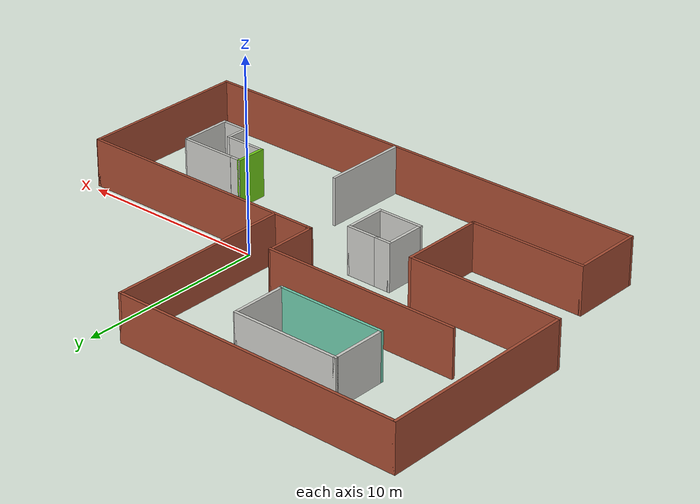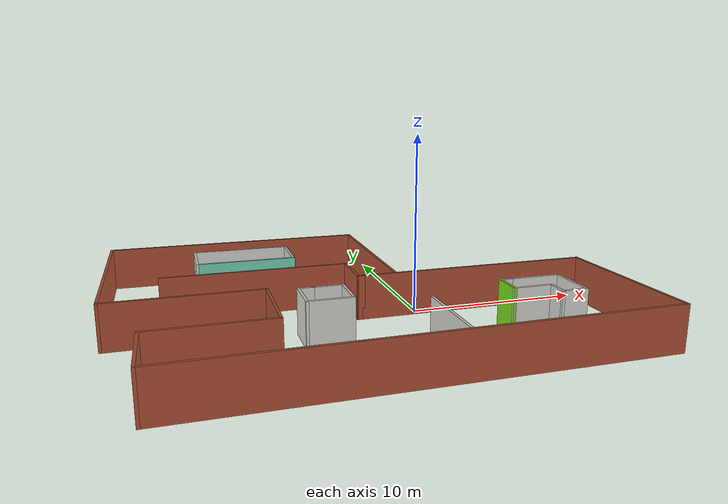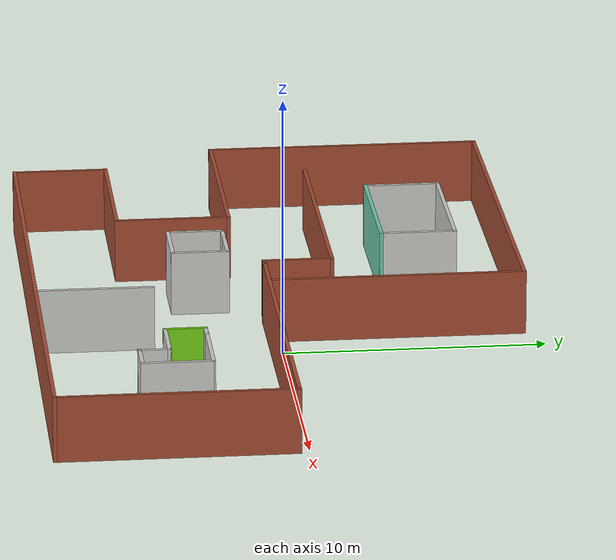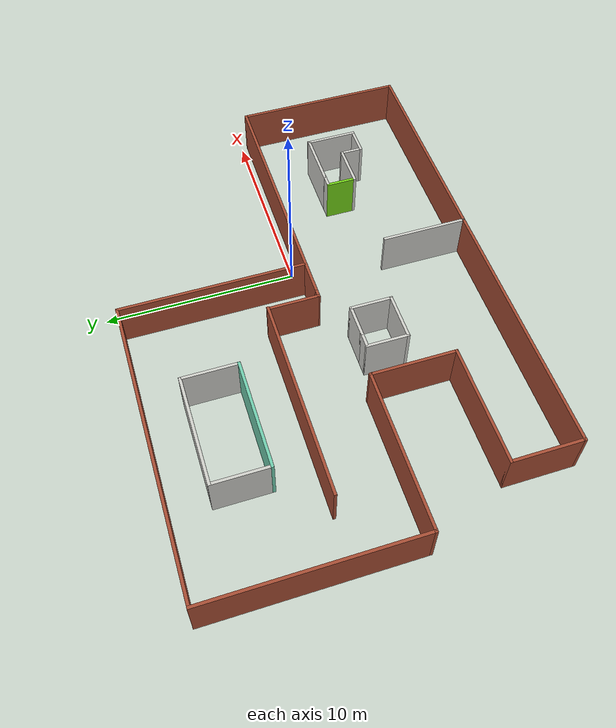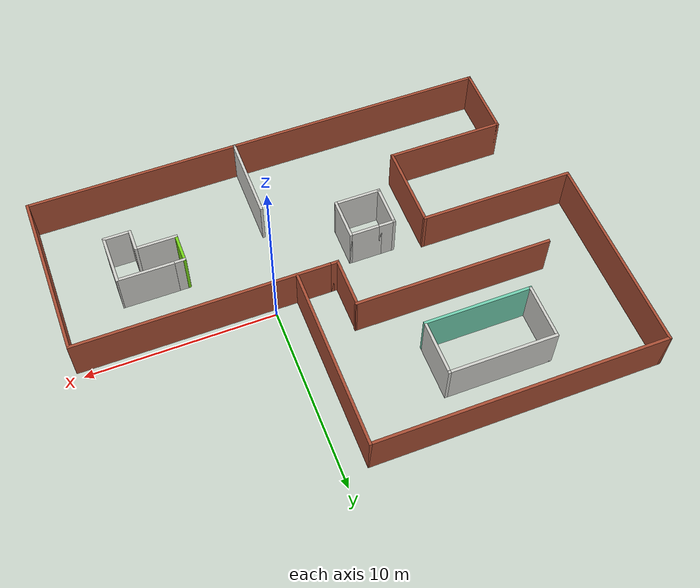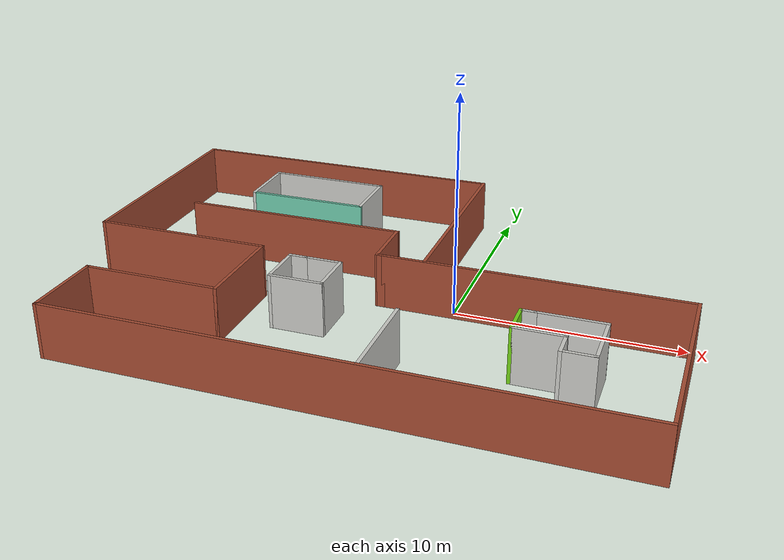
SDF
<?xml version='1.0'?>
<sdf version='1.6'>
  <model name='loop_closure_building'>
    <pose frame=''>-3.21725 0.036325 0 0 -0 0</pose>
    <link name='Wall_0'>
      <collision name='Wall_0_Collision'>
        <geometry>
          <box>
            <size>13.5 0.15 2.5</size>
          </box>
        </geometry>
        <pose frame=''>0 0 1.25 0 -0 0</pose>
      </collision>
      <visual name='Wall_0_Visual'>
        <pose frame=''>0 0 1.25 0 -0 0</pose>
        <geometry>
          <box>
            <size>13.5 0.15 2.5</size>
          </box>
        </geometry>
        <material>
          <script>
            <uri>file://media/materials/scripts/gazebo.material</uri>
            <name>Gazebo/Bricks</name>
          </script>
          <ambient>0.996078 0.47451 0.0196078 1</ambient>
        </material>
        <meta>
          <layer>0</layer>
        </meta>
      </visual>
      <pose frame=''>6.75 -0.425 0 0 -0 0</pose>
    </link>
    <link name='Wall_1'>
      <collision name='Wall_1_Collision'>
        <geometry>
          <box>
            <size>9 0.15 2.5</size>
          </box>
        </geometry>
        <pose frame=''>0 0 1.25 0 -0 0</pose>
      </collision>
      <visual name='Wall_1_Visual'>
        <pose frame=''>0 0 1.25 0 -0 0</pose>
        <geometry>
          <box>
            <size>9 0.15 2.5</size>
          </box>
        </geometry>
        <material>
          <script>
            <uri>file://media/materials/scripts/gazebo.material</uri>
            <name>Gazebo/Bricks</name>
          </script>
          <ambient>0.435294 0.796078 0.67451 1</ambient>
        </material>
        <meta>
          <layer>0</layer>
        </meta>
      </visual>
      <pose frame=''>13.425 -4.85 0 0 -0 -1.5708</pose>
    </link>
    <link name='Wall_10'>
      <collision name='Wall_10_Collision'>
        <geometry>
          <box>
            <size>3 0.15 2.5</size>
          </box>
        </geometry>
        <pose frame=''>0 0 1.25 0 -0 0</pose>
      </collision>
      <visual name='Wall_10_Visual'>
        <pose frame=''>0 0 1.25 0 -0 0</pose>
        <geometry>
          <box>
            <size>3 0.15 2.5</size>
          </box>
        </geometry>
        <material>
          <script>
            <uri>file://media/materials/scripts/gazebo.material</uri>
            <name>Gazebo/CeilingTiled</name>
          </script>
          <ambient>0.45098 0.823529 0.0862745 1</ambient>
        </material>
        <meta>
          <layer>0</layer>
        </meta>
      </visual>
      <pose frame=''>8.86279 -3.26203 0 0 -0 -0.002307</pose>
    </link>
    <link name='Wall_11'>
      <collision name='Wall_11_Collision'>
        <geometry>
          <box>
            <size>2.75 0.15 2.5</size>
          </box>
        </geometry>
        <pose frame=''>0 0 1.25 0 -0 0</pose>
      </collision>
      <visual name='Wall_11_Visual'>
        <pose frame=''>0 0 1.25 0 -0 0</pose>
        <geometry>
          <box>
            <size>2.75 0.15 2.5</size>
          </box>
        </geometry>
        <material>
          <script>
            <uri>file://media/materials/scripts/gazebo.material</uri>
            <name>Gazebo/CeilingTiled</name>
          </script>
          <ambient>0.45098 0.823529 0.0862745 1</ambient>
        </material>
        <meta>
          <layer>0</layer>
        </meta>
      </visual>
      <pose frame=''>10.2878 -4.56532 0 0 -0 -1.5708</pose>
    </link>
    <link name='Wall_12'>
      <collision name='Wall_12_Collision'>
        <geometry>
          <box>
            <size>1.5 0.15 2.5</size>
          </box>
        </geometry>
        <pose frame=''>0 0 1.25 0 -0 0</pose>
      </collision>
      <visual name='Wall_12_Visual'>
        <pose frame=''>0 0 1.25 0 -0 0</pose>
        <geometry>
          <box>
            <size>1.5 0.15 2.5</size>
          </box>
        </geometry>
        <material>
          <script>
            <uri>file://media/materials/scripts/gazebo.material</uri>
            <name>Gazebo/CeilingTiled</name>
          </script>
          <ambient>0.45098 0.823529 0.0862745 1</ambient>
        </material>
        <meta>
          <layer>0</layer>
        </meta>
      </visual>
      <pose frame=''>9.61279 -5.86532 0 0 -0 3.14159</pose>
    </link>
    <link name='Wall_13'>
      <collision name='Wall_13_Collision'>
        <geometry>
          <box>
            <size>1.25 0.15 2.5</size>
          </box>
        </geometry>
        <pose frame=''>0 0 1.25 0 -0 0</pose>
      </collision>
      <visual name='Wall_13_Visual'>
        <pose frame=''>0 0 1.25 0 -0 0</pose>
        <geometry>
          <box>
            <size>1.25 0.15 2.5</size>
          </box>
        </geometry>
        <material>
          <script>
            <uri>file://media/materials/scripts/gazebo.material</uri>
            <name>Gazebo/CeilingTiled</name>
          </script>
          <ambient>0.45098 0.823529 0.0862745 1</ambient>
        </material>
        <meta>
          <layer>0</layer>
        </meta>
      </visual>
      <pose frame=''>8.93779 -5.31532 0 0 -0 1.5708</pose>
    </link>
    <link name='Wall_14'>
      <collision name='Wall_14_Collision'>
        <geometry>
          <box>
            <size>2.25 0.15 2.5</size>
          </box>
        </geometry>
        <pose frame=''>0 0 1.25 0 -0 0</pose>
      </collision>
      <visual name='Wall_14_Visual'>
        <pose frame=''>0 0 1.25 0 -0 0</pose>
        <geometry>
          <box>
            <size>2.25 0.15 2.5</size>
          </box>
        </geometry>
        <material>
          <script>
            <uri>file://media/materials/scripts/gazebo.material</uri>
            <name>Gazebo/CeilingTiled</name>
          </script>
          <ambient>0.45098 0.823529 0.0862745 1</ambient>
        </material>
        <meta>
          <layer>0</layer>
        </meta>
      </visual>
      <pose frame=''>7.88779 -4.76532 0 0 -0 3.14159</pose>
    </link>
    <link name='Wall_15'>
      <collision name='Wall_15_Collision'>
        <geometry>
          <box>
            <size>1.65 0.15 2.5</size>
          </box>
        </geometry>
        <pose frame=''>0 0 1.25 0 -0 0</pose>
      </collision>
      <visual name='Wall_15_Visual'>
        <pose frame=''>0 0 1.25 0 -0 0</pose>
        <geometry>
          <box>
            <size>1.65 0.15 2.5</size>
          </box>
        </geometry>
        <material>
          <script>
            <uri>file://media/materials/scripts/gazebo.material</uri>
            <name>Gazebo/Grey</name>
          </script>
          <ambient>0.45098 0.823529 0.0862745 1</ambient>
        </material>
        <meta>
          <layer>0</layer>
        </meta>
      </visual>
      <pose frame=''>6.83779 -4.01532 0 0 -0 1.5708</pose>
    </link>
    <link name='Wall_16'>
      <collision name='Wall_16_Collision'>
        <geometry>
          <box>
            <size>0.75 0.15 2.5</size>
          </box>
        </geometry>
        <pose frame=''>0 0 1.25 0 -0 0</pose>
      </collision>
      <visual name='Wall_16_Visual'>
        <pose frame=''>0 0 1.25 0 -0 0</pose>
        <geometry>
          <box>
            <size>0.75 0.15 2.5</size>
          </box>
        </geometry>
        <material>
          <script>
            <uri>file://media/materials/scripts/gazebo.material</uri>
            <name>Gazebo/CeilingTiled</name>
          </script>
          <ambient>0.45098 0.823529 0.0862745 1</ambient>
        </material>
        <meta>
          <layer>0</layer>
        </meta>
      </visual>
      <pose frame=''>7.13779 -3.26532 0 0 -0 0</pose>
    </link>
    <link name='Wall_18'>
      <collision name='Wall_18_Collision'>
        <geometry>
          <box>
            <size>1.75 0.15 2.5</size>
          </box>
        </geometry>
        <pose frame=''>0 0 1.25 0 -0 0</pose>
      </collision>
      <visual name='Wall_18_Visual'>
        <pose frame=''>0 0 1.25 0 -0 0</pose>
        <geometry>
          <box>
            <size>1.75 0.15 2.5</size>
          </box>
        </geometry>
        <material>
          <script>
            <uri>file://media/materials/scripts/gazebo.material</uri>
            <name>Gazebo/CeilingTiled</name>
          </script>
          <ambient>0.45098 0.823529 0.0862745 1</ambient>
        </material>
        <meta>
          <layer>0</layer>
        </meta>
      </visual>
      <pose frame=''>-2.22592 -1.71169 0 0 -0 0</pose>
    </link>
    <link name='Wall_19'>
      <collision name='Wall_19_Collision'>
        <geometry>
          <box>
            <size>2.25 0.15 2.5</size>
          </box>
        </geometry>
        <pose frame=''>0 0 1.25 0 -0 0</pose>
      </collision>
      <visual name='Wall_19_Visual'>
        <pose frame=''>0 0 1.25 0 -0 0</pose>
        <geometry>
          <box>
            <size>2.25 0.15 2.5</size>
          </box>
        </geometry>
        <material>
          <script>
            <uri>file://media/materials/scripts/gazebo.material</uri>
            <name>Gazebo/CeilingTiled</name>
          </script>
          <ambient>0.45098 0.823529 0.0862745 1</ambient>
        </material>
        <meta>
          <layer>0</layer>
        </meta>
      </visual>
      <pose frame=''>-1.42592 -2.76169 0 0 -0 -1.5708</pose>
    </link>
    <link name='Wall_2'>
      <collision name='Wall_2_Collision'>
        <geometry>
          <box>
            <size>25 0.15 2.5</size>
          </box>
        </geometry>
        <pose frame=''>0 0 1.25 0 -0 0</pose>
      </collision>
      <visual name='Wall_2_Visual'>
        <pose frame=''>0 0 1.25 0 -0 0</pose>
        <geometry>
          <box>
            <size>25 0.15 2.5</size>
          </box>
        </geometry>
        <material>
          <script>
            <uri>file://media/materials/scripts/gazebo.material</uri>
            <name>Gazebo/Bricks</name>
          </script>
          <ambient>0.435294 0.796078 0.67451 1</ambient>
        </material>
        <meta>
          <layer>0</layer>
        </meta>
      </visual>
      <pose frame=''>1 -9.275 0 0 -0 3.14159</pose>
    </link>
    <link name='Wall_20'>
      <collision name='Wall_20_Collision'>
        <geometry>
          <box>
            <size>2.5 0.15 2.5</size>
          </box>
        </geometry>
        <pose frame=''>0 0 1.25 0 -0 0</pose>
      </collision>
      <visual name='Wall_20_Visual'>
        <pose frame=''>0 0 1.25 0 -0 0</pose>
        <geometry>
          <box>
            <size>2.5 0.15 2.5</size>
          </box>
        </geometry>
        <material>
          <script>
            <uri>file://media/materials/scripts/gazebo.material</uri>
            <name>Gazebo/CeilingTiled</name>
          </script>
          <ambient>0.45098 0.823529 0.0862745 1</ambient>
        </material>
        <meta>
          <layer>0</layer>
        </meta>
      </visual>
      <pose frame=''>-2.60092 -3.81169 0 0 -0 3.14159</pose>
    </link>
    <link name='Wall_21'>
      <collision name='Wall_21_Collision'>
        <geometry>
          <box>
            <size>2.25 0.15 2.5</size>
          </box>
        </geometry>
        <pose frame=''>0 0 1.25 0 -0 0</pose>
      </collision>
      <visual name='Wall_21_Visual'>
        <pose frame=''>0 0 1.25 0 -0 0</pose>
        <geometry>
          <box>
            <size>2.25 0.15 2.5</size>
          </box>
        </geometry>
        <material>
          <script>
            <uri>file://media/materials/scripts/gazebo.material</uri>
            <name>Gazebo/CeilingTiled</name>
          </script>
          <ambient>0.45098 0.823529 0.0862745 1</ambient>
        </material>
        <meta>
          <layer>0</layer>
        </meta>
      </visual>
      <pose frame=''>-3.77592 -2.76169 0 0 -0 1.5708</pose>
    </link>
    <link name='Wall_22'>
      <collision name='Wall_22_Collision'>
        <geometry>
          <box>
            <size>0.9 0.15 2.5</size>
          </box>
        </geometry>
        <pose frame=''>0 0 1.25 0 -0 0</pose>
      </collision>
      <visual name='Wall_22_Visual'>
        <pose frame=''>0 0 1.25 0 -0 0</pose>
        <geometry>
          <box>
            <size>0.9 0.15 2.5</size>
          </box>
        </geometry>
        <material>
          <script>
            <uri>file://media/materials/scripts/gazebo.material</uri>
            <name>Gazebo/CeilingTiled</name>
          </script>
          <ambient>0.45098 0.823529 0.0862745 1</ambient>
        </material>
        <meta>
          <layer>0</layer>
        </meta>
      </visual>
      <pose frame=''>-3.40092 -1.71169 0 0 -0 0</pose>
    </link>
    <link name='Wall_25'>
      <collision name='Wall_25_Collision'>
        <geometry>
          <box>
            <size>4.5 0.15 2.5</size>
          </box>
        </geometry>
        <pose frame=''>0 0 1.25 0 -0 0</pose>
      </collision>
      <visual name='Wall_25_Visual'>
        <pose frame=''>0 0 1.25 0 -0 0</pose>
        <geometry>
          <box>
            <size>4.5 0.15 2.5</size>
          </box>
        </geometry>
        <material>
          <script>
            <uri>file://media/materials/scripts/gazebo.material</uri>
            <name>Gazebo/CeilingTiled</name>
          </script>
          <ambient>0.435294 0.796078 0.67451 1</ambient>
        </material>
        <meta>
          <layer>0</layer>
        </meta>
      </visual>
      <pose frame=''>2.26954 -7.05353 0 0 -0 1.5708</pose>
    </link>
    <link name='Wall_27'>
      <collision name='Wall_27_Collision'>
        <geometry>
          <box>
            <size>4.5 0.15 2.5</size>
          </box>
        </geometry>
        <pose frame=''>0 0 1.25 0 -0 0</pose>
      </collision>
      <visual name='Wall_27_Visual'>
        <pose frame=''>0 0 1.25 0 -0 0</pose>
        <geometry>
          <box>
            <size>4.5 0.15 2.5</size>
          </box>
        </geometry>
        <material>
          <script>
            <uri>file://media/materials/scripts/gazebo.material</uri>
            <name>Gazebo/Bricks</name>
          </script>
          <ambient>0.435294 0.796078 0.67451 1</ambient>
        </material>
        <meta>
          <layer>0</layer>
        </meta>
      </visual>
      <pose frame=''>-5.325 -3.5 0 0 -0 1.5708</pose>
    </link>
    <link name='Wall_28'>
      <collision name='Wall_28_Collision'>
        <geometry>
          <box>
            <size>8.25 0.15 2.5</size>
          </box>
        </geometry>
        <pose frame=''>0 0 1.25 0 -0 0</pose>
      </collision>
      <visual name='Wall_28_Visual'>
        <pose frame=''>0 0 1.25 0 -0 0</pose>
        <geometry>
          <box>
            <size>8.25 0.15 2.5</size>
          </box>
        </geometry>
        <material>
          <script>
            <uri>file://media/materials/scripts/gazebo.material</uri>
            <name>Gazebo/Bricks</name>
          </script>
          <ambient>0.996078 0.47451 0.0196078 1</ambient>
        </material>
        <meta>
          <layer>0</layer>
        </meta>
      </visual>
      <pose frame=''>-9.375 -1.325 0 0 -0 3.14159</pose>
    </link>
    <link name='Wall_29'>
      <collision name='Wall_29_Collision'>
        <geometry>
          <box>
            <size>10.75 0.15 2.5</size>
          </box>
        </geometry>
        <pose frame=''>0 0 1.25 0 -0 0</pose>
      </collision>
      <visual name='Wall_29_Visual'>
        <pose frame=''>0 0 1.25 0 -0 0</pose>
        <geometry>
          <box>
            <size>10.75 0.15 2.5</size>
          </box>
        </geometry>
        <material>
          <script>
            <uri>file://media/materials/scripts/gazebo.material</uri>
            <name>Gazebo/Bricks</name>
          </script>
          <ambient>0.996078 0.47451 0.0196078 1</ambient>
        </material>
        <meta>
          <layer>0</layer>
        </meta>
      </visual>
      <pose frame=''>-13.425 3.975 0 0 -0 1.5708</pose>
    </link>
    <link name='Wall_3'>
      <collision name='Wall_3_Collision'>
        <geometry>
          <box>
            <size>3.75 0.15 2.5</size>
          </box>
        </geometry>
        <pose frame=''>0 0 1.25 0 -0 0</pose>
      </collision>
      <visual name='Wall_3_Visual'>
        <pose frame=''>0 0 1.25 0 -0 0</pose>
        <geometry>
          <box>
            <size>3.75 0.15 2.5</size>
          </box>
        </geometry>
        <material>
          <script>
            <uri>file://media/materials/scripts/gazebo.material</uri>
            <name>Gazebo/Bricks</name>
          </script>
          <ambient>0.435294 0.796078 0.67451 1</ambient>
        </material>
        <meta>
          <layer>0</layer>
        </meta>
      </visual>
      <pose frame=''>-11.425 -7.475 0 0 -0 1.5708</pose>
    </link>
    <link name='Wall_30'>
      <collision name='Wall_30_Collision'>
        <geometry>
          <box>
            <size>15.5 0.15 2.5</size>
          </box>
        </geometry>
        <pose frame=''>0 0 1.25 0 -0 0</pose>
      </collision>
      <visual name='Wall_30_Visual'>
        <pose frame=''>0 0 1.25 0 -0 0</pose>
        <geometry>
          <box>
            <size>15.5 0.15 2.5</size>
          </box>
        </geometry>
        <material>
          <script>
            <uri>file://media/materials/scripts/gazebo.material</uri>
            <name>Gazebo/Bricks</name>
          </script>
          <ambient>0.996078 0.47451 0.0196078 1</ambient>
        </material>
        <meta>
          <layer>0</layer>
        </meta>
      </visual>
      <pose frame=''>-5.75 9.275 0 0 -0 0</pose>
    </link>
    <link name='Wall_31'>
      <collision name='Wall_31_Collision'>
        <geometry>
          <box>
            <size>9.75 0.15 2.5</size>
          </box>
        </geometry>
        <pose frame=''>0 0 1.25 0 -0 0</pose>
      </collision>
      <visual name='Wall_31_Visual'>
        <pose frame=''>0 0 1.25 0 -0 0</pose>
        <geometry>
          <box>
            <size>9.75 0.15 2.5</size>
          </box>
        </geometry>
        <material>
          <script>
            <uri>file://media/materials/scripts/gazebo.material</uri>
            <name>Gazebo/Bricks</name>
          </script>
          <ambient>0.996078 0.47451 0.0196078 1</ambient>
        </material>
        <meta>
          <layer>0</layer>
        </meta>
      </visual>
      <pose frame=''>1.925 4.475 0 0 -0 -1.5708</pose>
    </link>
    <link name='Wall_33'>
      <collision name='Wall_33_Collision'>
        <geometry>
          <box>
            <size>5.75 0.15 2.5</size>
          </box>
        </geometry>
        <pose frame=''>0 0 1.25 0 -0 0</pose>
      </collision>
      <visual name='Wall_33_Visual'>
        <pose frame=''>0 0 1.25 0 -0 0</pose>
        <geometry>
          <box>
            <size>5.75 0.15 2.5</size>
          </box>
        </geometry>
        <material>
          <script>
            <uri>file://media/materials/scripts/gazebo.material</uri>
            <name>Gazebo/CeilingTiled</name>
          </script>
          <ambient>0.435294 0.796078 0.67451 1</ambient>
        </material>
        <meta>
          <layer>0</layer>
        </meta>
      </visual>
      <pose frame=''>-5.68104 7.2156 0 0 -0 0</pose>
    </link>
    <link name='Wall_34'>
      <collision name='Wall_34_Collision'>
        <geometry>
          <box>
            <size>3 0.15 2.5</size>
          </box>
        </geometry>
        <pose frame=''>0 0 1.25 0 -0 0</pose>
      </collision>
      <visual name='Wall_34_Visual'>
        <pose frame=''>0 0 1.25 0 -0 0</pose>
        <geometry>
          <box>
            <size>3 0.15 2.5</size>
          </box>
        </geometry>
        <material>
          <script>
            <uri>file://media/materials/scripts/gazebo.material</uri>
            <name>Gazebo/CeilingTiled</name>
          </script>
          <ambient>0.435294 0.796078 0.67451 1</ambient>
        </material>
        <meta>
          <layer>0</layer>
        </meta>
      </visual>
      <pose frame=''>-2.88104 5.7906 0 0 -0 -1.5708</pose>
    </link>
    <link name='Wall_35'>
      <collision name='Wall_35_Collision'>
        <geometry>
          <box>
            <size>5.75 0.15 2.5</size>
          </box>
        </geometry>
        <pose frame=''>0 0 1.25 0 -0 0</pose>
      </collision>
      <visual name='Wall_35_Visual'>
        <pose frame=''>0 0 1.25 0 -0 0</pose>
        <geometry>
          <box>
            <size>5.75 0.15 2.5</size>
          </box>
        </geometry>
        <material>
          <script>
            <uri>file://media/materials/scripts/gazebo.material</uri>
            <name>Gazebo/Grey</name>
          </script>
          <ambient>0.435294 0.796078 0.67451 1</ambient>
        </material>
        <meta>
          <layer>0</layer>
        </meta>
      </visual>
      <pose frame=''>-5.68104 4.3656 0 0 -0 3.14159</pose>
    </link>
    <link name='Wall_36'>
      <collision name='Wall_36_Collision'>
        <geometry>
          <box>
            <size>3 0.15 2.5</size>
          </box>
        </geometry>
        <pose frame=''>0 0 1.25 0 -0 0</pose>
      </collision>
      <visual name='Wall_36_Visual'>
        <pose frame=''>0 0 1.25 0 -0 0</pose>
        <geometry>
          <box>
            <size>3 0.15 2.5</size>
          </box>
        </geometry>
        <material>
          <script>
            <uri>file://media/materials/scripts/gazebo.material</uri>
            <name>Gazebo/CeilingTiled</name>
          </script>
          <ambient>0.435294 0.796078 0.67451 1</ambient>
        </material>
        <meta>
          <layer>0</layer>
        </meta>
      </visual>
      <pose frame=''>-8.48104 5.7906 0 0 -0 1.5708</pose>
    </link>
    <link name='Wall_4'>
      <collision name='Wall_4_Collision'>
        <geometry>
          <box>
            <size>6.25 0.15 2.5</size>
          </box>
        </geometry>
        <pose frame=''>0 0 1.25 0 -0 0</pose>
      </collision>
      <visual name='Wall_4_Visual'>
        <pose frame=''>0 0 1.25 0 -0 0</pose>
        <geometry>
          <box>
            <size>6.25 0.15 2.5</size>
          </box>
        </geometry>
        <material>
          <script>
            <uri>file://media/materials/scripts/gazebo.material</uri>
            <name>Gazebo/Bricks</name>
          </script>
          <ambient>0.435294 0.796078 0.67451 1</ambient>
        </material>
        <meta>
          <layer>0</layer>
        </meta>
      </visual>
      <pose frame=''>-8.375 -5.675 0 0 -0 0</pose>
    </link>
    <link name='Wall_6'>
      <collision name='Wall_6_Collision'>
        <geometry>
          <box>
            <size>10.5 0.15 2.5</size>
          </box>
        </geometry>
        <pose frame=''>0 0 1.25 0 -0 0</pose>
      </collision>
      <visual name='Wall_6_Visual'>
        <pose frame=''>0 0 1.25 0 -0 0</pose>
        <geometry>
          <box>
            <size>10.5 0.15 2.5</size>
          </box>
        </geometry>
        <material>
          <script>
            <uri>file://media/materials/scripts/gazebo.material</uri>
            <name>Gazebo/Bricks</name>
          </script>
          <ambient>0.996078 0.47451 0.0196078 1</ambient>
        </material>
        <meta>
          <layer>0</layer>
        </meta>
      </visual>
      <pose frame=''>-5.37709 2.175 0 0 -0 0</pose>
    </link>
    <link name='Wall_7'>
      <collision name='Wall_7_Collision'>
        <geometry>
          <box>
            <size>2.75001 0.15 2.5</size>
          </box>
        </geometry>
        <pose frame=''>0 0 1.25 0 -0 0</pose>
      </collision>
      <visual name='Wall_7_Visual'>
        <pose frame=''>0 0 1.25 0 -0 0</pose>
        <geometry>
          <box>
            <size>2.75001 0.15 2.5</size>
          </box>
        </geometry>
        <material>
          <script>
            <uri>file://media/materials/scripts/gazebo.material</uri>
            <name>Gazebo/Bricks</name>
          </script>
          <ambient>0.996078 0.47451 0.0196078 1</ambient>
        </material>
        <meta>
          <layer>0</layer>
        </meta>
      </visual>
      <pose frame=''>-0.228839 0.875 0 0 -0 -1.56784</pose>
    </link>
    <link name='Wall_8'>
      <collision name='Wall_8_Collision'>
        <geometry>
          <box>
            <size>0.45 0.15 2.5</size>
          </box>
        </geometry>
        <pose frame=''>0 0 1.25 0 -0 0</pose>
      </collision>
      <visual name='Wall_8_Visual'>
        <pose frame=''>0 0 1.25 0 -0 0</pose>
        <geometry>
          <box>
            <size>0.45 0.15 2.5</size>
          </box>
        </geometry>
        <material>
          <script>
            <uri>file://media/materials/scripts/gazebo.material</uri>
            <name>Gazebo/Bricks</name>
          </script>
          <ambient>0.996078 0.47451 0.0196078 1</ambient>
        </material>
        <meta>
          <layer>0</layer>
        </meta>
      </visual>
      <pose frame=''>-0.075 -0.425 0 0 -0 0</pose>
    </link>
    <static>1</static>
  </model>
</sdf>
